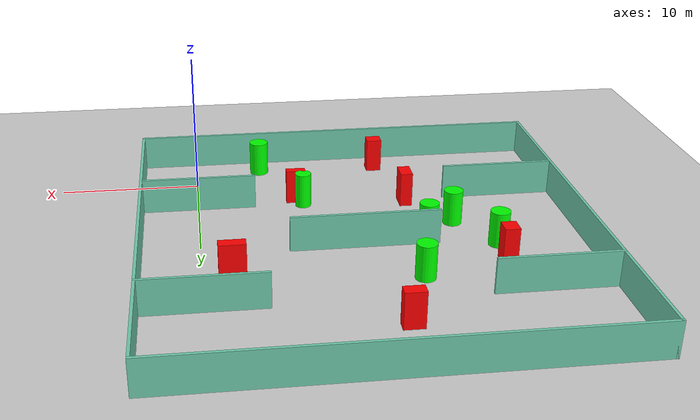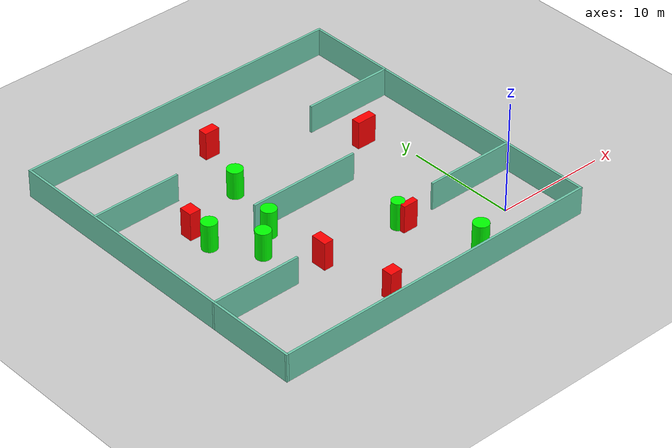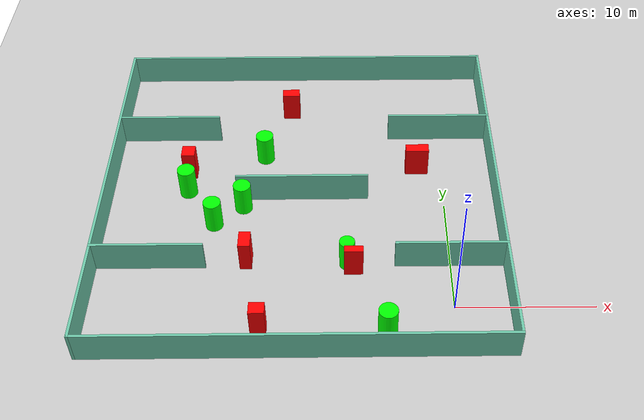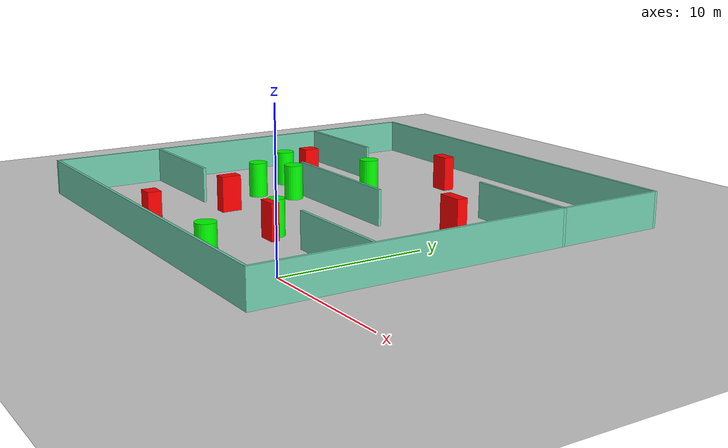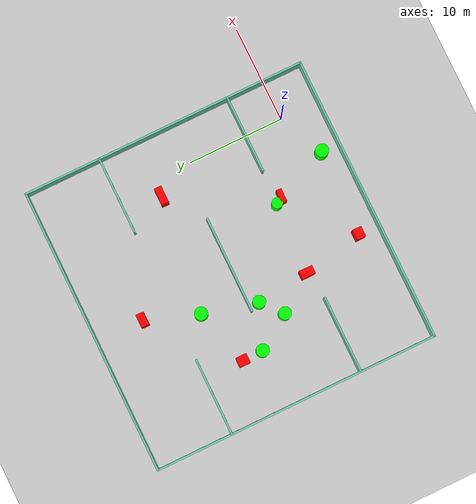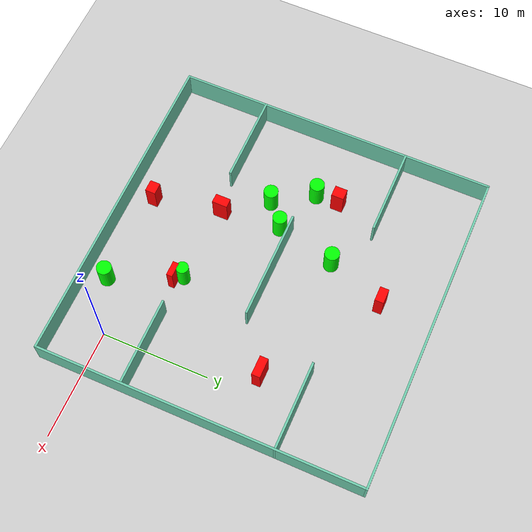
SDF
<sdf version="1.7">
 <world name="default">
  <light name="sun" type="directional">
   <pose>0 0 10 0 -0 0</pose>
   <diffuse>0.8 0.8 0.8 1</diffuse>
   <specular>0.2 0.2 0.2 1</specular>
   <attenuation>
    <range>1000</range>
    <constant>0.9</constant>
    <linear>0.01</linear>
    <quadratic>0.001</quadratic>
   </attenuation>
   <direction>-0.5 0.1 -0.9</direction>
   <spot><inner_angle>0</inner_angle><outer_angle>0</outer_angle><falloff>0</falloff></spot>
  </light>
  <model name="ground_plane">
   <static>1</static>
   <link name="link">
    <collision name="collision">
     <geometry><plane><normal>0 0 1</normal><size>100 100</size></plane></geometry>
     <surface>
      <contact><collide_bitmask>65535</collide_bitmask></contact>
      <friction><ode><mu>100</mu><mu2>50</mu2></ode></friction>
     </surface>
    </collision>
    <visual name="visual">
     <cast_shadows>0</cast_shadows>
     <geometry><plane><normal>0 0 1</normal><size>100 100</size></plane></geometry>
     <material>
      <script><uri>file://media/materials/scripts/gazebo.material</uri><name>Gazebo/Grey</name></script>
     </material>
    </visual>
   </link>
  </model>
  <gravity>0 0 -9.8</gravity>
  <magnetic_field>6e-06 2.3e-05 -4.2e-05</magnetic_field>
  <atmosphere type="adiabatic"/>
  <physics type="ode">
   <max_step_size>0.001</max_step_size>
   <real_time_factor>1</real_time_factor>
   <real_time_update_rate>1000</real_time_update_rate>
  </physics>
  <scene><ambient>0.4 0.4 0.4 1</ambient><background>0.7 0.7 0.7 1</background><shadows>1</shadows></scene>
  <spherical_coordinates>
   <surface_model>EARTH_WGS84</surface_model>
   <latitude_deg>0</latitude_deg>
   <longitude_deg>0</longitude_deg>
   <elevation>0</elevation>
   <heading_deg>0</heading_deg>
  </spherical_coordinates>
  <model name="my_base_walls">
   <link name="Wall_10">
    <collision name="Wall_10_Collision">
     <geometry><box><size>8.2 0.2 2.5</size></box></geometry>
     <pose>0 0 1.25 0 -0 0</pose>
    </collision>
    <visual name="Wall_10_Visual">
     <pose>0 0 1.25 0 -0 0</pose>
     <geometry><box><size>8.2 0.2 2.5</size></box></geometry>
     <material>
      <script><uri>file://media/materials/scripts/gazebo.material</uri><name>Gazebo/Grey</name></script>
      <ambient>0.435294 0.796078 0.67451 1</ambient>
     </material>
     <meta><layer>0</layer></meta>
    </visual>
    <pose>-11 -7 0 0 -0 0</pose>
   </link>
   <link name="Wall_12">
    <collision name="Wall_12_Collision">
     <geometry><box><size>8.2 0.2 2.5</size></box></geometry>
     <pose>0 0 1.25 0 -0 0</pose>
    </collision>
    <visual name="Wall_12_Visual">
     <pose>0 0 1.25 0 -0 0</pose>
     <geometry><box><size>8.2 0.2 2.5</size></box></geometry>
     <material>
      <script><uri>file://media/materials/scripts/gazebo.material</uri><name>Gazebo/Grey</name></script>
      <ambient>0.435294 0.796078 0.67451 1</ambient>
     </material>
     <meta><layer>0</layer></meta>
    </visual>
    <pose>-11 7 0 0 -0 0</pose>
   </link>
   <link name="Wall_14">
    <collision name="Wall_14_Collision">
     <geometry><box><size>8.2 0.2 2.5</size></box></geometry>
     <pose>0 0 1.25 0 -0 0</pose>
    </collision>
    <visual name="Wall_14_Visual">
     <pose>0 0 1.25 0 -0 0</pose>
     <geometry><box><size>8.2 0.2 2.5</size></box></geometry>
     <material>
      <script><uri>file://media/materials/scripts/gazebo.material</uri><name>Gazebo/Grey</name></script>
      <ambient>0.435294 0.796078 0.67451 1</ambient>
     </material>
     <meta><layer>0</layer></meta>
    </visual>
    <pose>11 7 0 0 -0 3.14159</pose>
   </link>
   <link name="Wall_16">
    <collision name="Wall_16_Collision">
     <geometry><box><size>10.2 0.2 2.5</size></box></geometry>
     <pose>0 0 1.25 0 -0 0</pose>
    </collision>
    <visual name="Wall_16_Visual">
     <pose>0 0 1.25 0 -0 0</pose>
     <geometry><box><size>10.2 0.2 2.5</size></box></geometry>
     <material>
      <script><uri>file://media/materials/scripts/gazebo.material</uri><name>Gazebo/Grey</name></script>
      <ambient>0.435294 0.796078 0.67451 1</ambient>
     </material>
     <meta><layer>0</layer></meta>
    </visual>
    <pose>0 0 0 0 -0 3.14159</pose>
   </link>
   <link name="Wall_2">
    <collision name="Wall_2_Collision">
     <geometry><box><size>30.2 0.2 2.5</size></box></geometry>
     <pose>0 0 1.25 0 -0 0</pose>
    </collision>
    <visual name="Wall_2_Visual">
     <pose>0 0 1.25 0 -0 0</pose>
     <geometry><box><size>30.2 0.2 2.5</size></box></geometry>
     <material>
      <script><uri>file://media/materials/scripts/gazebo.material</uri><name>Gazebo/Grey</name></script>
      <ambient>0.435294 0.796078 0.67451 1</ambient>
     </material>
     <meta><layer>0</layer></meta>
    </visual>
    <pose>0 -15 0 0 -0 3.14159</pose>
   </link>
   <link name="Wall_3">
    <collision name="Wall_3_Collision">
     <geometry><box><size>30.2 0.2 2.5</size></box></geometry>
     <pose>0 0 1.25 0 -0 0</pose>
    </collision>
    <visual name="Wall_3_Visual">
     <pose>0 0 1.25 0 -0 0</pose>
     <geometry><box><size>30.2 0.2 2.5</size></box></geometry>
     <material>
      <script><uri>file://media/materials/scripts/gazebo.material</uri><name>Gazebo/Grey</name></script>
      <ambient>0.435294 0.796078 0.67451 1</ambient>
     </material>
     <meta><layer>0</layer></meta>
    </visual>
    <pose>-15 0 0 0 -0 1.5708</pose>
   </link>
   <link name="Wall_4">
    <collision name="Wall_4_Collision">
     <geometry><box><size>30.2 0.2 2.5</size></box></geometry>
     <pose>0 0 1.25 0 -0 0</pose>
    </collision>
    <visual name="Wall_4_Visual">
     <pose>0 0 1.25 0 -0 0</pose>
     <geometry><box><size>30.2 0.2 2.5</size></box></geometry>
     <material>
      <script><uri>file://media/materials/scripts/gazebo.material</uri><name>Gazebo/Grey</name></script>
      <ambient>0.435294 0.796078 0.67451 1</ambient>
     </material>
     <meta><layer>0</layer></meta>
    </visual>
    <pose>0 15 0 0 -0 0</pose>
   </link>
   <link name="Wall_6">
    <collision name="Wall_6_Collision">
     <geometry><box><size>30.2 0.2 2.5</size></box></geometry>
     <pose>0 0 1.25 0 -0 0</pose>
    </collision>
    <visual name="Wall_6_Visual">
     <pose>0 0 1.25 0 -0 0</pose>
     <geometry><box><size>30.2 0.2 2.5</size></box></geometry>
     <material>
      <script><uri>file://media/materials/scripts/gazebo.material</uri><name>Gazebo/Grey</name></script>
      <ambient>0.435294 0.796078 0.67451 1</ambient>
     </material>
     <meta><layer>0</layer></meta>
    </visual>
    <pose>15 0 0 0 -0 1.5708</pose>
   </link>
   <link name="Wall_8">
    <collision name="Wall_8_Collision">
     <geometry><box><size>8.2 0.2 2.5</size></box></geometry>
     <pose>0 0 1.25 0 -0 0</pose>
    </collision>
    <visual name="Wall_8_Visual">
     <pose>0 0 1.25 0 -0 0</pose>
     <geometry><box><size>8.2 0.2 2.5</size></box></geometry>
     <material>
      <script><uri>file://media/materials/scripts/gazebo.material</uri><name>Gazebo/Grey</name></script>
      <ambient>0.435294 0.796078 0.67451 1</ambient>
     </material>
     <meta><layer>0</layer></meta>
    </visual>
    <pose>11 -7 0 0 -0 3.14159</pose>
   </link>
   <static>1</static>
   <pose>-11 11 0 0 -0 0</pose>
  </model>
  <model name="cylinder1">
   <static>1</static>
   <link name="link">
    <inertial>
     <mass>1</mass>
     <inertia><ixx>0.5</ixx><ixy>0</ixy><ixz>0</ixz><iyy>0.5</iyy><iyz>0</iyz><izz>1</izz></inertia>
    </inertial>
    <collision name="collision">
     <geometry><cylinder><radius>0.5683569146483187</radius><length>2.5</length></cylinder></geometry>
    </collision>
    <visual name="visual">
     <geometry><cylinder><radius>0.5683569146483187</radius><length>2.5</length></cylinder></geometry>
     <material>
      <ambient>0 1 0 1</ambient>
      <diffuse>0 1 0 1</diffuse>
      <specular>0.1 0.1 0.1 1</specular>
      <emissive>0 0 0 0</emissive>
     </material>
    </visual>
   </link>
   <pose>-7.564760622547723 4.133764714066102 1.25 0 0 0</pose>
  </model>
  <model name="cylinder2">
   <static>1</static>
   <link name="link">
    <inertial>
     <mass>1</mass>
     <inertia><ixx>0.5</ixx><ixy>0</ixy><ixz>0</ixz><iyy>0.5</iyy><iyz>0</iyz><izz>1</izz></inertia>
    </inertial>
    <collision name="collision">
     <geometry><cylinder><radius>0.6781456310678824</radius><length>2.5</length></cylinder></geometry>
    </collision>
    <visual name="visual">
     <geometry><cylinder><radius>0.6781456310678824</radius><length>2.5</length></cylinder></geometry>
     <material>
      <ambient>0 1 0 1</ambient>
      <diffuse>0 1 0 1</diffuse>
      <specular>0.1 0.1 0.1 1</specular>
      <emissive>0 0 0 0</emissive>
     </material>
    </visual>
   </link>
   <pose>-19.96258120990665 11.730911333711106 1.25 0 0 0</pose>
  </model>
  <model name="cylinder3">
   <static>1</static>
   <link name="link">
    <inertial>
     <mass>1</mass>
     <inertia><ixx>0.5</ixx><ixy>0</ixy><ixz>0</ixz><iyy>0.5</iyy><iyz>0</iyz><izz>1</izz></inertia>
    </inertial>
    <collision name="collision">
     <geometry><cylinder><radius>0.6863559593741835</radius><length>2.5</length></cylinder></geometry>
    </collision>
    <visual name="visual">
     <geometry><cylinder><radius>0.6863559593741835</radius><length>2.5</length></cylinder></geometry>
     <material>
      <ambient>0 1 0 1</ambient>
      <diffuse>0 1 0 1</diffuse>
      <specular>0.1 0.1 0.1 1</specular>
      <emissive>0 0 0 0</emissive>
     </material>
    </visual>
   </link>
   <pose>-4.812633554911859 -2.1122359261255577 1.25 0 0 0</pose>
  </model>
  <model name="cylinder4">
   <static>1</static>
   <link name="link">
    <inertial>
     <mass>1</mass>
     <inertia><ixx>0.5</ixx><ixy>0</ixy><ixz>0</ixz><iyy>0.5</iyy><iyz>0</iyz><izz>1</izz></inertia>
    </inertial>
    <collision name="collision">
     <geometry><cylinder><radius>0.686400146336585</radius><length>2.5</length></cylinder></geometry>
    </collision>
    <visual name="visual">
     <geometry><cylinder><radius>0.686400146336585</radius><length>2.5</length></cylinder></geometry>
     <material>
      <ambient>0 1 0 1</ambient>
      <diffuse>0 1 0 1</diffuse>
      <specular>0.1 0.1 0.1 1</specular>
      <emissive>0 0 0 0</emissive>
     </material>
    </visual>
   </link>
   <pose>-14.09577446529444 15.596703979046772 1.25 0 0 0</pose>
  </model>
  <model name="cylinder5">
   <static>1</static>
   <link name="link">
    <inertial>
     <mass>1</mass>
     <inertia><ixx>0.5</ixx><ixy>0</ixy><ixz>0</ixz><iyy>0.5</iyy><iyz>0</iyz><izz>1</izz></inertia>
    </inertial>
    <collision name="collision">
     <geometry><cylinder><radius>0.662889344329278</radius><length>2.5</length></cylinder></geometry>
    </collision>
    <visual name="visual">
     <geometry><cylinder><radius>0.662889344329278</radius><length>2.5</length></cylinder></geometry>
     <material>
      <ambient>0 1 0 1</ambient>
      <diffuse>0 1 0 1</diffuse>
      <specular>0.1 0.1 0.1 1</specular>
      <emissive>0 0 0 0</emissive>
     </material>
    </visual>
   </link>
   <pose>-17.643820196197996 8.180286058825947 1.25 0 0 0</pose>
  </model>
  <model name="cylinder6">
   <static>1</static>
   <link name="link">
    <inertial>
     <mass>1</mass>
     <inertia><ixx>0.5</ixx><ixy>0</ixy><ixz>0</ixz><iyy>0.5</iyy><iyz>0</iyz><izz>1</izz></inertia>
    </inertial>
    <collision name="collision">
     <geometry><cylinder><radius>0.668040977975976</radius><length>2.5</length></cylinder></geometry>
    </collision>
    <visual name="visual">
     <geometry><cylinder><radius>0.668040977975976</radius><length>2.5</length></cylinder></geometry>
     <material>
      <ambient>0 1 0 1</ambient>
      <diffuse>0 1 0 1</diffuse>
      <specular>0.1 0.1 0.1 1</specular>
      <emissive>0 0 0 0</emissive>
     </material>
    </visual>
   </link>
   <pose>-15.528219408470186 9.967468594996939 1.25 0 0 0</pose>
  </model>
  <model name="box1">
   <static>1</static>
   <link name="link">
    <inertial>
     <mass>1</mass>
     <inertia><ixx>0.083</ixx><ixy>0</ixy><ixz>0</ixz><iyy>0.083</iyy><iyz>0</iyz><izz>0.083</izz></inertia>
    </inertial>
    <collision name="collision">
     <geometry><box><size>1.3782509592699645 0.8249303310647598 2.5</size></box></geometry>
    </collision>
    <visual name="visual">
     <geometry><box><size>1.3782509592699645 0.8249303310647598 2.5</size></box></geometry>
     <material>
      <ambient>1 0 0 1</ambient>
      <diffuse>1 0 0 1</diffuse>
      <specular>0.1 0.1 0.1 1</specular>
      <emissive>0 0 0 0</emissive>
     </material>
    </visual>
    <sensor name="my_contact" type="contact">
     <contact><collision>box_collision</collision><topic>__default_topic__</topic></contact>
    </sensor>
   </link>
   <pose>-12.139777454712673 21.02773202042655 1.25 0 0 0</pose>
  </model>
  <model name="box2">
   <static>1</static>
   <link name="link">
    <inertial>
     <mass>1</mass>
     <inertia><ixx>0.083</ixx><ixy>0</ixy><ixz>0</ixz><iyy>0.083</iyy><iyz>0</iyz><izz>0.083</izz></inertia>
    </inertial>
    <collision name="collision">
     <geometry><box><size>0.8652170775873437 1.4224960171116598 2.5</size></box></geometry>
    </collision>
    <visual name="visual">
     <geometry><box><size>0.8652170775873437 1.4224960171116598 2.5</size></box></geometry>
     <material>
      <ambient>1 0 0 1</ambient>
      <diffuse>1 0 0 1</diffuse>
      <specular>0.1 0.1 0.1 1</specular>
      <emissive>0 0 0 0</emissive>
     </material>
    </visual>
    <sensor name="my_contact" type="contact">
     <contact><collision>box_collision</collision><topic>__default_topic__</topic></contact>
    </sensor>
   </link>
   <pose>-14.967601443022454 4.47224757730695 1.25 0 0 0</pose>
  </model>
  <model name="box3">
   <static>1</static>
   <link name="link">
    <inertial>
     <mass>1</mass>
     <inertia><ixx>0.083</ixx><ixy>0</ixy><ixz>0</ixz><iyy>0.083</iyy><iyz>0</iyz><izz>0.083</izz></inertia>
    </inertial>
    <collision name="collision">
     <geometry><box><size>1.10192092050272 0.9558026099864019 2.5</size></box></geometry>
    </collision>
    <visual name="visual">
     <geometry><box><size>1.10192092050272 0.9558026099864019 2.5</size></box></geometry>
     <material>
      <ambient>1 0 0 1</ambient>
      <diffuse>1 0 0 1</diffuse>
      <specular>0.1 0.1 0.1 1</specular>
      <emissive>0 0 0 0</emissive>
     </material>
    </visual>
    <sensor name="my_contact" type="contact">
     <contact><collision>box_collision</collision><topic>__default_topic__</topic></contact>
    </sensor>
   </link>
   <pose>-13.72715579695117 -1.8005844168053402 1.25 0 0 0</pose>
  </model>
  <model name="box4">
   <static>1</static>
   <link name="link">
    <inertial>
     <mass>1</mass>
     <inertia><ixx>0.083</ixx><ixy>0</ixy><ixz>0</ixz><iyy>0.083</iyy><iyz>0</iyz><izz>0.083</izz></inertia>
    </inertial>
    <collision name="collision">
     <geometry><box><size>1.3807986175415947 0.5543966301896126 2.5</size></box></geometry>
    </collision>
    <visual name="visual">
     <geometry><box><size>1.3807986175415947 0.5543966301896126 2.5</size></box></geometry>
     <material>
      <ambient>1 0 0 1</ambient>
      <diffuse>1 0 0 1</diffuse>
      <specular>0.1 0.1 0.1 1</specular>
      <emissive>0 0 0 0</emissive>
     </material>
    </visual>
    <sensor name="my_contact" type="contact">
     <contact><collision>box_collision</collision><topic>__default_topic__</topic></contact>
    </sensor>
   </link>
   <pose>-7.096758909978144 3.4342943492201092 1.25 0 0 0</pose>
  </model>
  <model name="box5">
   <static>1</static>
   <link name="link">
    <inertial>
     <mass>1</mass>
     <inertia><ixx>0.083</ixx><ixy>0</ixy><ixz>0</ixz><iyy>0.083</iyy><iyz>0</iyz><izz>0.083</izz></inertia>
    </inertial>
    <collision name="collision">
     <geometry><box><size>1.8011964825494495 0.7802013864963337 2.5</size></box></geometry>
    </collision>
    <visual name="visual">
     <geometry><box><size>1.8011964825494495 0.7802013864963337 2.5</size></box></geometry>
     <material>
      <ambient>1 0 0 1</ambient>
      <diffuse>1 0 0 1</diffuse>
      <specular>0.1 0.1 0.1 1</specular>
      <emissive>0 0 0 0</emissive>
     </material>
    </visual>
    <sensor name="my_contact" type="contact">
     <contact><collision>box_collision</collision><topic>__default_topic__</topic></contact>
    </sensor>
   </link>
   <pose>-1.9467366902694323 14.058440855773807 1.25 0 0 0</pose>
  </model>
  <model name="box6">
   <static>1</static>
   <link name="link">
    <inertial>
     <mass>1</mass>
     <inertia><ixx>0.083</ixx><ixy>0</ixy><ixz>0</ixz><iyy>0.083</iyy><iyz>0</iyz><izz>0.083</izz></inertia>
    </inertial>
    <collision name="collision">
     <geometry><box><size>1.0297951842470168 1.153008367135438 2.5</size></box></geometry>
    </collision>
    <visual name="visual">
     <geometry><box><size>1.0297951842470168 1.153008367135438 2.5</size></box></geometry>
     <material>
      <ambient>1 0 0 1</ambient>
      <diffuse>1 0 0 1</diffuse>
      <specular>0.1 0.1 0.1 1</specular>
      <emissive>0 0 0 0</emissive>
     </material>
    </visual>
    <sensor name="my_contact" type="contact">
     <contact><collision>box_collision</collision><topic>__default_topic__</topic></contact>
    </sensor>
   </link>
   <pose>-19.99716649530481 13.887766136598099 1.25 0 0 0</pose>
  </model>
 </world>
</sdf>
